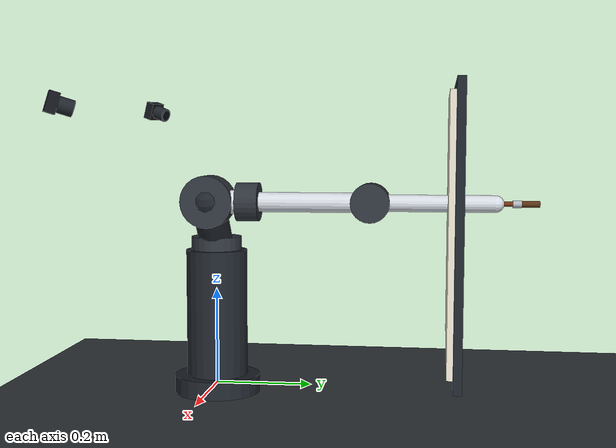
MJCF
<?xml version="1.0" encoding="utf-8"?>
<mujoco model="active_inference_painter">
  <compiler angle="radian" autolimits="true" inertiafromgeom="false"/>
  <option timestep="0.001" gravity="0 0 -9.81" integrator="implicitfast"
          cone="elliptic" iterations="80" noslip_iterations="4"/>
  <size nconmax="200" njmax="1000"/>

  <statistic center="0.075 0.25 0.30" extent="1.05"/>

  <visual>
    <headlight ambient="0.35 0.35 0.35" diffuse="0.65 0.65 0.65"
               specular="0.15 0.15 0.15"/>
    <rgba haze="0.85 0.88 0.92 1"/>
    <global azimuth="135" elevation="-18"
            offwidth="1024" offheight="1024"/>
  </visual>

  <custom>
    <text name="model_version" data="mujoco-robstride-electromechanical-v4"/>
    <text name="kinematic_convention" data="Rz_yaw_Rx_pitch_Ry_roll_Rx_elbow"/>
    <text name="actuator_assignment" data="yaw_RS03_pitch_RS03_roll_RS02_elbow_RS02"/>
    <text name="actuator_model" data="output_equivalent_dcmotor_position_v1"/>
    <text name="torque_saturation_semantics" data="hard_peak_envelope_without_thermal_derating"/>
    <text name="power_electronics_model" data="voltage_limited_equivalent_not_phase_resolved"/>
    <text name="encoder_model" data="ideal_joint_state_without_noise_or_delay"/>
    <text name="thermal_model" data="disabled_missing_vendor_constants"/>
    <text name="transmission_model" data="rigid_integrated_reducer_without_backlash"/>
    <text name="paint_process" data="external_VerticalCanvas"/>
    <text name="camera_rig_version" data="provisional-compact-dual-imx296-v1"/>
    <text name="sensor_camera_order"
          data="canvas_right_oblique canvas_left_oblique"/>
    <text name="sensor_camera_roles"
          data="contact_tracking contact_tracking"/>
    <text name="sensor_camera_availability"
          data="continuous continuous"/>
    <text name="sensor_camera_channels"
          data="grayscale grayscale"/>
    <text name="sensor_camera_registration"
          data="canvas_plane_homography canvas_plane_homography"/>
    <text name="sensor_camera_hardware_baseline"
          data="Raspberry_Pi_Global_Shutter_Camera_IMX296 Raspberry_Pi_Global_Shutter_Camera_IMX296"/>
    <text name="sensor_camera_hardware_status"
          data="selected_not_purchased selected_not_purchased"/>
    <text name="sensor_camera_lens_status"
          data="provisional_4mm_CS_mount provisional_4mm_CS_mount"/>
    <text name="sensor_camera_capture_mode"
          data="IMX296_full_1456x1088 IMX296_full_1456x1088"/>
    <text name="sensor_camera_transport"
          data="CSI-2 CSI-2"/>
    <text name="sensor_camera_shutter_model"
          data="global global"/>
    <text name="camera_geometry_model" data="ideal_pinhole_without_distortion"/>
    <text name="camera_calibration_status"
          data="nominal_lens_geometry_pending_physical_calibration"/>
    <text name="camera_normalization" data="role_dependent_v1"/>
    <text name="camera_focus_model"
          data="fixed_manual_provisional_4mm_cs_pending_focus_measurement"/>
    <text name="camera_observation_encoding"
          data="linear_grayscale_float32_normalized_0_1"/>
    <text name="camera_shutter_model" data="global_pair_pending_time_sync_v1"/>
    <text name="camera_observation_model"
          data="mujoco_native_global_foveal_composite_v1"/>
    <text name="camera_product_contract"
          data="native_global_requested_fovea_v1"/>
    <text name="camera_fovea_addressing"
          data="canvas_uv_center_and_span"/>
    <text name="camera_fovea_selection_boundary"
          data="external_observation_space_request_without_oracle_default"/>
    <text name="camera_noise_model"
          data="gaussian_read_plus_signal_dependent_approximation_v0"/>
    <text name="camera_noise_status" data="provisional_not_calibrated"/>
    <text name="camera_likelihood_model"
          data="registered_grayscale_occlusion_mixture_linearized_v0"/>
    <text name="camera_likelihood_status"
          data="provisional_simulation_prior_pending_physical_calibration"/>
    <text name="camera_specular_model"
          data="mujoco_lighting_residual_mix_approximation_v0"/>
    <numeric name="sensor_camera_model_resolution_px"
             data="512 512 512 512"/>
    <numeric name="sensor_camera_acquisition_resolution_px"
             data="1456 1088 1456 1088"/>
    <numeric name="sensor_camera_foveal_resolution_px"
             data="256 256 256 256"/>
    <numeric name="sensor_camera_focal_length_mm" data="4 4"/>
    <numeric name="sensor_camera_active_width_mm" data="5.0232 5.0232"/>
    <numeric name="sensor_camera_full_frame_equivalent_focal_length_mm"
             data="28.666985188724 28.666985188724"/>
    <numeric name="sensor_camera_sample_rate_hz" data="60 60"/>
    <numeric name="sensor_camera_read_noise_std"
             data="0.004 0.004"/>
    <numeric name="sensor_camera_signal_noise_std"
             data="0.008 0.008"/>
    <numeric name="sensor_camera_likelihood_model_error_std"
             data="0.040 0.040"/>
    <numeric name="sensor_camera_likelihood_inlier_probability"
             data="0.950 0.950"/>
    <numeric name="sensor_camera_likelihood_outlier_std"
             data="0.350 0.350"/>
    <numeric name="sensor_camera_latency_s"
             data="0.016666666667 0.016666666667"/>
    <numeric name="sensor_camera_dropout_probability" data="0 0"/>
    <numeric name="sensor_camera_quantization_bits" data="10 10"/>
    <numeric name="camera_provisional_specular_strength" data="0.08"/>
    <numeric name="joint_range_rad"
             data="-1.570796326795 1.570796326795 -1.570796326795 1.570796326795 -3.141592653590 3.141592653590 -1.483529864195 2.617993877991"/>
    <numeric name="native_controller_joint_range_rad"
             data="-1.570796326795 1.570796326795 -1.570796326795 1.570796326795 -3.141592653590 3.141592653590 0 2.617993877991"/>
    <numeric name="safe_home_qpos_rad"
             data="0 -0.872664625997 0 1.745329251994 0 0 0"/>
    <numeric name="camera_clear_park_qpos_rad"
             data="0 -1.334725703904 0 1.413674247728 0 0 0"/>
    <numeric name="link_length_m" data="0.3302 0.3302"/>
    <numeric name="post_yaw_height_m" data="0.285"/>
    <numeric name="yaw_to_pitch_offset_m" data="0.075 0 0.106"/>
    <numeric name="yaw_to_pitch_distance_m" data="0.129849913362"/>
    <numeric name="pitch_to_roll_offset_m" data="0.083"/>
    <numeric name="canvas_size_m" data="0.508 0.508"/>
    <numeric name="native_canvas_contact_y_m" data="0.4318"/>
    <numeric name="canvas_contact_y_m" data="0.4826"/>
    <numeric name="canvas_center_x_m" data="0.075"/>
    <numeric name="canvas_center_z_m" data="0.350"/>
    <numeric name="brush_diameter_m" data="0.0127"/>
    <numeric name="brush_tangential_bend_range_rad"
             data="-0.349065850399 0.349065850399"/>
    <numeric name="brush_tangential_stiffness_nm_per_rad" data="1.2 1.2"/>
    <numeric name="brush_tangential_damping_nms_per_rad" data="0.01 0.01"/>
    <numeric name="robstride_rated_torque_nm" data="20 20 6 6"/>
    <numeric name="robstride_peak_torque_nm" data="60 60 17 17"/>
    <numeric name="robstride_mass_kg" data="0.880 0.880 0.405 0.405"/>
    <numeric name="robstride_reduction_ratio" data="9 9 7.75 7.75"/>
    <numeric name="robstride_rated_voltage_v" data="48 48 48 48"/>
    <numeric name="robstride_voltage_min_v" data="15 15 24 24"/>
    <numeric name="robstride_voltage_max_v" data="60 60 60 60"/>
    <numeric name="robstride_rated_power_w" data="380 380 170 170"/>
    <numeric name="robstride_rated_speed_rad_s"
             data="10.471975511966 10.471975511966 10.471975511966 10.471975511966"/>
    <numeric name="robstride_no_load_speed_rad_s"
             data="20.420352248333 20.420352248333 42.935099858269 42.935099858269"/>
    <numeric name="robstride_rated_phase_current_apk" data="12 12 7 7"/>
    <numeric name="robstride_peak_phase_current_apk" data="43 43 23 23"/>
    <numeric name="robstride_torque_constant_nm_per_arms"
             data="2.36 2.36 1.22 1.22"/>
    <numeric name="robstride_back_emf_constant_vs_per_rad"
             data="2.295880796136 2.295880796136 1.080219146592 1.080219146592"/>
    <numeric name="robstride_effective_motor_constant_nm_per_a"
             data="2.327719630643 2.327719630643 1.147984041196 1.147984041196"/>
    <!-- Equivalent output-side R is selected so 48 V at zero speed reaches
         the specified peak output torque. It is not raw phase resistance. -->
    <numeric name="robstride_equivalent_terminal_resistance_ohm"
             data="1.862175704515 1.862175704515 3.241366704555 3.241366704555"/>
    <numeric name="robstride_equivalent_viscous_loss_nms_per_rad"
             data="0.068394108064 0.068394108064 0.013368829372 0.013368829372"/>
    <numeric name="robstride_line_resistance_ohm" data="0.39 0.39 0.58 0.58"/>
    <numeric name="robstride_line_inductance_h"
             data="0.000275 0.000275 0.000263 0.000263"/>
    <numeric name="robstride_electrical_time_constant_s"
             data="0.000705128205 0.000705128205 0.000453448276 0.000453448276"/>
    <numeric name="robstride_no_load_current_arms" data="0.6 0.6 0.5 0.5"/>
    <numeric name="robstride_pole_count" data="42 42 28 28"/>
    <numeric name="robstride_rated_current_arms"
             data="8.485281374239 8.485281374239 4.949747468306 4.949747468306"/>
    <numeric name="robstride_model_peak_current_a"
             data="25.776300208208 25.776300208208 14.808568229121 14.808568229121"/>
    <!-- These voltage-space gains preserve the prior approximate joint-space
         stiffness/damping. They are not claimed RobStride firmware gains. -->
    <numeric name="robstride_controller_kp_v_per_rad"
             data="168 208 240 352.941176470588"/>
    <numeric name="robstride_controller_kd_vs_per_rad"
             data="13.644706652048 16.844706652048 18.596836435874 27.067424671168"/>
    <numeric name="robstride_encoder_count" data="2 2 2 2"/>
  </custom>

  <asset>
    <texture name="ground_tex" type="2d" builtin="checker"
             rgb1="0.18 0.20 0.22" rgb2="0.23 0.25 0.27"
             width="256" height="256"/>
    <material name="ground_mat" texture="ground_tex" texrepeat="4 4"
              reflectance="0.08"/>
    <material name="frame_mat" rgba="0.12 0.14 0.17 1"
              specular="0.65" shininess="0.55"/>
    <material name="motor_mat" rgba="0.18 0.20 0.23 1"
              specular="0.8" shininess="0.72"/>
    <material name="output_mat" rgba="0.92 0.45 0.06 1"
              specular="0.55" shininess="0.62"/>
    <material name="link_mat" rgba="0.82 0.84 0.87 1"
              specular="0.72" shininess="0.65"/>
    <material name="canvas_mat" rgba="0.88 0.86 0.79 1"
              specular="0.05" shininess="0.1"/>
    <material name="handle_mat" rgba="0.44 0.20 0.07 1"
              specular="0.2" shininess="0.25"/>
    <material name="ferrule_mat" rgba="0.68 0.71 0.74 1"
              specular="0.9" shininess="0.82"/>
    <material name="bristle_mat" rgba="0.35 0.20 0.08 1"
              specular="0.08" shininess="0.12"/>
    <material name="camera_body_mat" rgba="0.075 0.085 0.105 1"
              specular="0.45" shininess="0.42"/>
    <material name="camera_barrel_mat" rgba="0.12 0.14 0.17 1"
              specular="0.72" shininess="0.68"/>
    <material name="camera_glass_mat" rgba="0.015 0.055 0.075 1"
              specular="0.95" shininess="0.95" reflectance="0.04"/>
  </asset>

  <default>
    <joint limited="true" solreflimit="0.004 1" solimplimit="0.95 0.99 0.001"
           frictionloss="0.04"/>
    <geom contype="0" conaffinity="0" group="1"/>
    <site group="3"/>
    <default class="structure">
      <geom contype="0" conaffinity="0" group="1"/>
    </default>
    <default class="contact_surface">
      <geom contype="1" conaffinity="1" condim="4" group="0"
            margin="0.0005"/>
    </default>
    <default class="camera_visual">
      <geom contype="0" conaffinity="0" group="2"/>
    </default>
  </default>

  <worldbody>
    <light name="key_light" pos="-0.5 -0.2 1.1" dir="0.4 0.55 -1"
           diffuse="0.85 0.83 0.78"/>
    <light name="fill_light" pos="0.7 0.1 0.7" dir="-0.6 0.35 -0.6"
           diffuse="0.38 0.43 0.52"/>
    <camera name="overview" pos="0.90 -0.82 0.72"
            xyaxes="0.66 0.75 0 -0.24 0.21 0.95"/>
    <camera name="canvas_view" pos="0.075 -0.72 0.35"
            xyaxes="1 0 0 0 0 1"/>
    <camera name="top_view" pos="0.075 0.25 1.25"
            xyaxes="1 0 0 0 1 0"/>
    <camera name="canvas_right_oblique" pos="0.375 -0.1674 0.570"
            xyaxes="0.907959384500 0.419058177462 0
                    -0.123098930765 0.266714349990 0.955881848742"
            fovy="50.271939314149" resolution="1024 1024"/>
    <camera name="canvas_left_oblique" pos="-0.225 -0.1674 0.570"
            xyaxes="0.907959384500 -0.419058177462 0
                    0.123098930765 0.266714349990 0.955881848742"
            fovy="50.271939314149" resolution="1024 1024"/>

    <geom name="floor" type="plane" pos="0 0 -0.025" size="1.2 1.2 0.05"
          material="ground_mat" contype="0" conaffinity="0"/>

    <!-- The collision box's front face is the y=0.4826 m canvas plane. -->
    <body name="canvas" pos="0.075 0.48895 0.350">
      <geom name="canvas_surface" class="contact_surface" type="box"
            size="0.254 0.00635 0.254" material="canvas_mat"
            friction="0.85 0.02 0.001"/>
      <geom name="canvas_back" type="box" pos="0 0.013 0"
            size="0.275 0.008 0.275" material="frame_mat"/>
      <site name="canvas_center" type="sphere" pos="0 -0.00635 0"
            size="0.004" rgba="0.1 0.7 0.9 0.35"/>
    </body>

    <body name="canvas_right_camera_housing" pos="0.375 -0.1674 0.570"
          xyaxes="0.907959384500 0.419058177462 0
                  -0.123098930765 0.266714349990 0.955881848742">
      <geom name="canvas_right_camera_body" class="camera_visual" type="box"
            pos="0 0 0.040" size="0.019 0.019 0.010"
            material="camera_body_mat"/>
      <geom name="canvas_right_camera_barrel" class="camera_visual"
            type="cylinder" fromto="0 0 0.002 0 0 0.030" size="0.015"
            material="camera_barrel_mat"/>
      <geom name="canvas_right_camera_glass" class="camera_visual"
            type="cylinder" fromto="0 0 0.001 0 0 0.002" size="0.012"
            material="camera_glass_mat"/>
    </body>
    <body name="canvas_left_camera_housing" pos="-0.225 -0.1674 0.570"
          xyaxes="0.907959384500 -0.419058177462 0
                  0.123098930765 0.266714349990 0.955881848742">
      <geom name="canvas_left_camera_body" class="camera_visual" type="box"
            pos="0 0 0.040" size="0.019 0.019 0.010"
            material="camera_body_mat"/>
      <geom name="canvas_left_camera_barrel" class="camera_visual"
            type="cylinder" fromto="0 0 0.002 0 0 0.030" size="0.015"
            material="camera_barrel_mat"/>
      <geom name="canvas_left_camera_glass" class="camera_visual"
            type="cylinder" fromto="0 0 0.001 0 0 0.002" size="0.012"
            material="camera_glass_mat"/>
    </body>
    <!-- The compact baseline has no separate inspection or overhead camera. -->

    <body name="base">
      <geom name="base_plate" type="cylinder" fromto="0 0 -0.02 0 0 0.018"
            size="0.09" material="frame_mat"/>
      <geom name="base_column" type="cylinder" fromto="0 0 0.018 0 0 0.285"
            size="0.064" material="frame_mat"/>

      <!-- RS03 yaw stator: 106 mm diameter x 56 mm axial length. -->
      <geom name="yaw_rs03_stator" type="cylinder"
            fromto="0 0 0.257 0 0 0.313" size="0.053"
            material="motor_mat"/>

      <body name="yaw_output" pos="0 0 0.285">
        <inertial pos="0.045 0 0.075" mass="1.18"
                  diaginertia="0.0060 0.0060 0.0042"/>
        <joint name="yaw" type="hinge" axis="0 0 1"
               range="-1.570796326795 1.570796326795"
               damping="0.068394108064" frictionloss="0" armature="0.0030"
               actuatorfrcrange="-60 60"/>
        <geom name="yaw_output_flange" type="cylinder"
              fromto="0 0 -0.008 0 0 0.012" size="0.040"
              material="output_mat"/>
        <geom name="shoulder_yoke" type="capsule"
              fromto="0 0 0.012 0.075 0 0.106"
              size="0.035" material="frame_mat"/>

        <!-- RS03 pitch stator; axis is yaw-frame +x and its center is
             translated 75 mm along +x beside the post for sweep clearance. -->
        <geom name="pitch_rs03_stator" type="cylinder"
              fromto="0.047 0 0.106 0.103 0 0.106" size="0.053"
              material="motor_mat"/>

        <body name="pitch_output" pos="0.075 0 0.106">
          <inertial pos="0 0.056 0" mass="0.72"
                    diaginertia="0.0028 0.0018 0.0028"/>
          <joint name="pitch" type="hinge" axis="1 0 0"
                 range="-1.570796326795 1.570796326795"
                 damping="0.068394108064" frictionloss="0" armature="0.0030"
                 actuatorfrcrange="-60 60"/>
          <geom name="pitch_output_flange" type="cylinder"
                fromto="-0.012 0 0 0.012 0 0" size="0.041"
                material="output_mat"/>
          <geom name="proximal_upper_arm" type="capsule"
                fromto="0 0.018 0 0 0.083 0" size="0.024"
                material="link_mat"/>

          <!-- RS02 roll stator; translation lies on the roll axis and does
               not change the Rz-Rx-Ry-Rx sign/orientation convention. -->
          <geom name="roll_rs02_stator" type="cylinder"
                fromto="0 0.06025 0 0 0.10575 0" size="0.03925"
                material="motor_mat"/>

          <body name="roll_output" pos="0 0.083 0">
            <inertial pos="0 0.125 0" mass="1.02"
                      diaginertia="0.0105 0.0024 0.0105"/>
            <joint name="roll" type="hinge" axis="0 1 0"
                   range="-3.141592653590 3.141592653590"
                   damping="0.013368829372" frictionloss="0" armature="0.0007"
                   actuatorfrcrange="-17 17"/>
            <geom name="roll_output_flange" type="cylinder"
                  fromto="0 -0.010 0 0 0.010 0" size="0.030"
                  material="output_mat"/>
            <geom name="upper_arm_link" type="capsule"
                  fromto="0 0.020 0 0 0.2472 0" size="0.020"
                  material="link_mat"/>

            <!-- RS02 elbow stator at 0.3302 m from the pitch axis. -->
            <geom name="elbow_rs02_stator" type="cylinder"
                  fromto="-0.02275 0.2472 0 0.02275 0.2472 0"
                  size="0.03925" material="motor_mat"/>

            <body name="elbow_output" pos="0 0.2472 0">
              <inertial pos="0 0.142 0" mass="0.82"
                        diaginertia="0.0082 0.0013 0.0082"/>
              <joint name="elbow" type="hinge" axis="1 0 0"
                     range="-1.483529864195 2.617993877991"
                     damping="0.013368829372" frictionloss="0" armature="0.0007"
                     actuatorfrcrange="-17 17"/>
              <geom name="elbow_output_flange" type="cylinder"
                    fromto="-0.010 0 0 0.010 0 0" size="0.030"
                    material="output_mat"/>
              <geom name="forearm_link" type="capsule"
                    fromto="0 0.026 0 0 0.245 0" size="0.017"
                    material="link_mat"/>

              <!-- Brush handle and ferrule are rigid. The 35 mm bristle body
                   below translates axially to approximate brush compression. -->
              <geom name="brush_handle" type="capsule"
                    fromto="0 0.222 0 0 0.278 0" size="0.0050"
                    material="handle_mat"/>
              <geom name="brush_ferrule" type="cylinder"
                    fromto="0 0.278 0 0 0.2952 0" size="0.0072"
                    material="ferrule_mat"/>
              <site name="brush_mount" type="sphere" pos="0 0.2952 0"
                    size="0.003" rgba="0.9 0.5 0.1 0.5"/>

              <body name="brush_compliance" pos="0 0.2952 0">
                <inertial pos="0 0.0175 0" mass="0.06"
                          diaginertia="0.000020 0.000004 0.000020"/>
                <!-- Lumped two-axis bundle flexure at the ferrule. The bristle
                     bundle remains one rigid body; individual hairs do not
                     bend or collide independently. -->
                <joint name="brush_bend_x" type="hinge" axis="1 0 0"
                       range="-0.349065850399 0.349065850399"
                       stiffness="1.2" damping="0.01" springref="0"/>
                <joint name="brush_bend_z" type="hinge" axis="0 0 1"
                       range="-0.349065850399 0.349065850399"
                       stiffness="1.2" damping="0.01" springref="0"/>
                <joint name="brush_compression" type="slide" axis="0 1 0"
                       range="-0.012 0" stiffness="800" damping="6"
                       springref="0" frictionloss="0.15"/>
                <geom name="bristle_contact" class="contact_surface"
                      type="cylinder" fromto="0 0 0 0 0.035 0"
                      size="0.00635" material="bristle_mat"
                      friction="0.85 0.03 0.001"/>
                <site name="brush_contact_zone" type="box"
                      pos="0 0.0345 0" size="0.0065 0.0015 0.0065"
                      rgba="0.9 0.2 0.1 0.18"/>
                <site name="tip" type="sphere" pos="0 0.035 0"
                      size="0.002" rgba="1 0.15 0.05 0.9"/>
                <site name="brush_force_site" type="sphere" pos="0 0 0"
                      size="0.0025" rgba="0.2 0.8 0.3 0.45"/>
              </body>
            </body>
          </body>
        </body>
      </body>
    </body>
  </worldbody>

  <contact>
    <pair name="brush_canvas_contact" geom1="bristle_contact"
          geom2="canvas_surface" condim="4"
          friction="0.85 0.85 0.03 0.001 0.001"
          solref="-1400 -24" solimp="0.90 0.97 0.001 0.5 2"
          margin="0.0005"/>
  </contact>

  <actuator>
    <dcmotor name="yaw_position" joint="yaw" gear="1"
             motorconst="2.36 2.295880796136"
             resistance="1.862175704515" inductance="0 0.000705128205"
             saturation="60 0 0" input="position"
             controller="168 0 13.644706652048 0 0 48"
             ctrlrange="-1.570796326795 1.570796326795"/>
    <dcmotor name="pitch_position" joint="pitch" gear="1"
             motorconst="2.36 2.295880796136"
             resistance="1.862175704515" inductance="0 0.000705128205"
             saturation="60 0 0" input="position"
             controller="208 0 16.844706652048 0 0 48"
             ctrlrange="-1.570796326795 1.570796326795"/>
    <dcmotor name="roll_position" joint="roll" gear="1"
             motorconst="1.22 1.080219146592"
             resistance="3.241366704555" inductance="0 0.000453448276"
             saturation="17 0 0" input="position"
             controller="240 0 18.596836435874 0 0 48"
             ctrlrange="-3.141592653590 3.141592653590"/>
    <dcmotor name="elbow_position" joint="elbow" gear="1"
             motorconst="1.22 1.080219146592"
             resistance="3.241366704555" inductance="0 0.000453448276"
             saturation="17 0 0" input="position"
             controller="352.941176470588 0 27.067424671168 0 0 48"
             ctrlrange="-1.483529864195 2.617993877991"/>
  </actuator>

  <!-- Sensor names are stable adapter keys. Painting code should consume tip
       pose plus realized contact; it must not infer paint from MuJoCo pixels. -->
  <sensor>
    <jointpos name="yaw_position_sensor" joint="yaw"/>
    <jointpos name="pitch_position_sensor" joint="pitch"/>
    <jointpos name="roll_position_sensor" joint="roll"/>
    <jointpos name="elbow_position_sensor" joint="elbow"/>
    <jointvel name="yaw_velocity_sensor" joint="yaw"/>
    <jointvel name="pitch_velocity_sensor" joint="pitch"/>
    <jointvel name="roll_velocity_sensor" joint="roll"/>
    <jointvel name="elbow_velocity_sensor" joint="elbow"/>
    <jointpos name="brush_bend_x_sensor" joint="brush_bend_x"/>
    <jointpos name="brush_bend_z_sensor" joint="brush_bend_z"/>
    <jointpos name="brush_compression_sensor" joint="brush_compression"/>
    <touch name="brush_touch_sensor" site="brush_contact_zone"/>
    <force name="brush_force_sensor" site="brush_force_site"/>
    <torque name="brush_torque_sensor" site="brush_force_site"/>
    <framepos name="tip_position_sensor" objtype="site" objname="tip"/>
    <framequat name="tip_orientation_sensor" objtype="site" objname="tip"/>
    <velocimeter name="tip_linear_velocity_sensor" site="tip"/>
    <actuatorfrc name="yaw_torque_sensor" actuator="yaw_position"/>
    <actuatorfrc name="pitch_torque_sensor" actuator="pitch_position"/>
    <actuatorfrc name="roll_torque_sensor" actuator="roll_position"/>
    <actuatorfrc name="elbow_torque_sensor" actuator="elbow_position"/>
  </sensor>

  <keyframe>
    <key name="safe_home"
         qpos="0 -0.872664625997 0 1.745329251994 0 0 0"
         ctrl="0 -0.872664625997 0 1.745329251994"/>
    <key name="camera_clear_park"
         qpos="0 -1.334725703904 0 1.413674247728 0 0 0"
         ctrl="0 -1.334725703904 0 1.413674247728"/>
    <key name="contact_probe"
         qpos="0 -0.824069157992 0 1.479812604153 0 0 0"
         ctrl="0 -0.824069157992 0 1.479812604153"/>
    <key name="lower_arm_down"
         qpos="0 0 0 -1.396263401595 0 0 0"
         ctrl="0 0 0 -1.396263401595"/>
    <key name="bottom_edge_probe"
         qpos="0 0.018483091890 0 -1.097714535920 0 0 0"
         ctrl="0 0.018483091890 0 -1.097714535920"/>
  </keyframe>
</mujoco>
